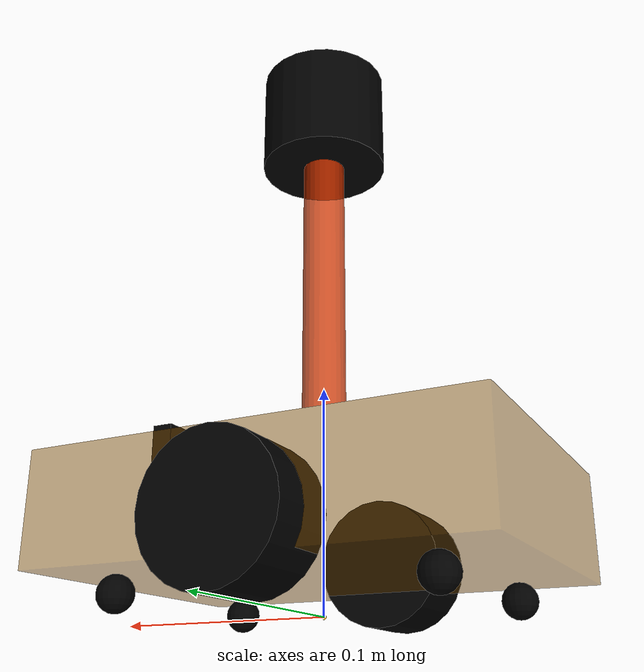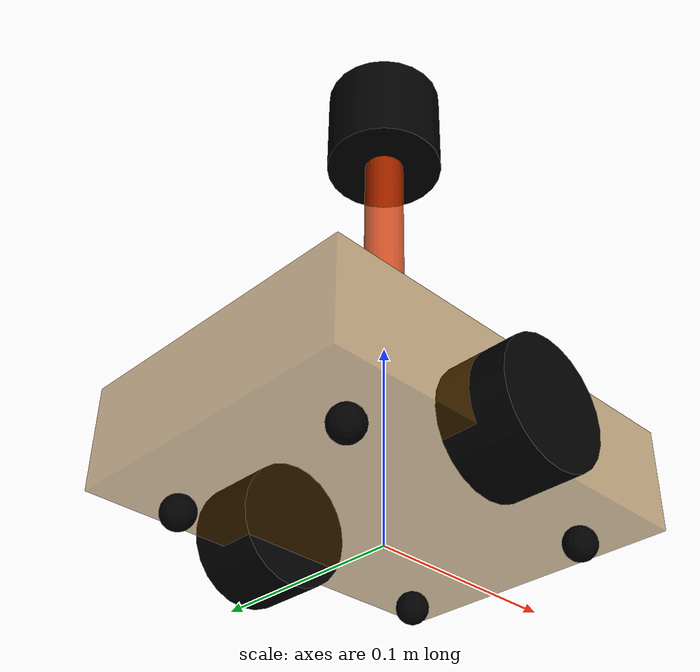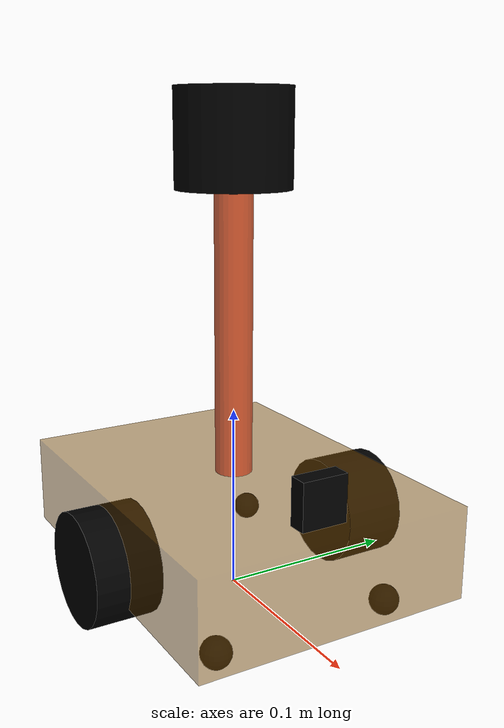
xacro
<robot name="my_car" xmlns:xacro="http://wiki.ros.org/xacro">
    <xacro:include filename="inertial.xacro" />
    <xacro:include filename="materials.xacro" />
    <xacro:include filename="my_base.urdf.xacro" />
    <xacro:include filename="my_camera.urdf.xacro" />
    <xacro:include filename="my_laser.urdf.xacro" />
    <xacro:include filename="move.urdf.xacro" />
    <xacro:include filename="camera_gazebo.urdf.xacro" />
    <xacro:include filename="laser_gazebo.urdf.xacro" />

</robot>

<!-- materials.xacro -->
<robot name="material" xmlns:xacro="http://wiki.ros.org/xacro">
  <material name="black">
    <color rgba="0.0 0.0 0.0 1.0"/>
  </material>
  <material name="blue">
    <color rgba="0.0 0.0 0.8 1.0"/>
  </material>
  <material name="green">
    <color rgba="0.0 0.8 0.0 1.0"/>
  </material>
  <material name="grey">
    <color rgba="0.2 0.2 0.2 1.0"/>
  </material>
  <material name="orange">
    <color rgba="${255/255} ${108/255} ${10/255} 1.0"/>
  </material>
  <material name="brown">
    <color rgba="${222/255} ${207/255} ${195/255} 1.0"/>
  </material>
  <material name="red">
    <color rgba="0.8 0.0 0.0 1.0"/>
  </material>
  <material name="white">
    <color rgba="1.0 1.0 1.0 1.0"/>
  </material>
  <material name="yellow">
    <color rgba="1.0 1.0 0.0 1.0"/>
  </material>
  <material name="purple">
    <color rgba="0.5 0.0 0.5 1.0"/>
  </material>
  <material name="pink">
    <color rgba="1.0 0.75 0.8 1.0"/>
  </material>
  <material name="cyan">
    <color rgba="0.0 1.0 1.0 1.0"/>
  </material>
  <material name="magenta">
    <color rgba="1.0 0.0 1.0 1.0"/>
  </material>
  <material name="light_blue">
    <color rgba="0.68 0.85 0.9 1.0"/>
  </material>
  <material name="dark_green">
    <color rgba="0.0 0.39 0.0 1.0"/>
  </material>
  <material name="olive">
    <color rgba="0.5 0.5 0.0 1.0"/>
  </material>
  <material name="teal">
    <color rgba="0.0 0.5 0.5 1.0"/>
  </material>
</robot>

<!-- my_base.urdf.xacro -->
<robot name="my_base" xmlns:xacro="http://www.ros.org/wiki/xacro">
    <xacro:property name="PI" value="3.14159"/>
    <!-- 底盘属性 -->
    <xacro:property name="base_footprint_radius" value="0.001" />
    <xacro:property name="base_link_l" value="0.2" />
    <xacro:property name="base_link_w" value="0.15" />
    <xacro:property name="base_link_h" value="0.05" />
    <xacro:property name="earth_space" value="0.016" />
    <!-- 离地间距 -->
    <xacro:property name="base_link_m" value="1.5" />
    <!-- 底盘 -->
    <link name="base_footprint">
        <visual>
            <geometry>
                <sphere radius="${base_footprint_radius}" />
            </geometry>
        </visual>
    </link>
    <link name="base_link">
        <visual>
            <geometry>
                <box size="${base_link_l} ${base_link_w} ${base_link_h}" />
            </geometry>
            <origin xyz="0 0 0" rpy="0 0 0" />
            <material name="yellow">
                <color rgba="0.5 0.3 0.0 0.5" />
            </material>
        </visual>
        <collision>
            <geometry>
                <box size="${base_link_l} ${base_link_w} ${base_link_h}" />
                <origin xyz="0 0 0" rpy="0 0 0" />
            </geometry>
        </collision>
        <xacro:Box_inertial_matrix m="${base_link_m}" l="${base_link_l}" w="${base_link_w}" h="${base_link_h}" />
    </link>
    <joint name="base_link2base_footprint" type="fixed">
        <parent link="base_footprint" />
        <child link="base_link" />
        <origin xyz="0 0 ${earth_space + base_link_h / 2 }" />
    </joint>
    <gazebo reference="base_link">
        <material>Gazebo/Blue</material>
    </gazebo>
    <!-- 驱动轮 -->
    <xacro:property name="wheel_radius" value="0.03" />
    <xacro:property name="wheel_length" value="0.035" />
    <xacro:property name="wheel_m" value="0.1" />
    <xacro:macro name="add_wheels" params="name flag">
        <link name="${name}_wheel">
            <visual>
                <geometry>
                    <cylinder radius="${wheel_radius}" length="${wheel_length}" />
                </geometry>
                <origin xyz="0.0 0.0 0.0" rpy="${PI / 2} 0.0 0.0" />
                <material name="black" />
            </visual>
            <collision>
                <geometry>
                    <cylinder radius="${wheel_radius}" length="${wheel_length}" />
                </geometry>
                <origin xyz="0.0 0.0 0.0" rpy="${PI / 2} 0.0 0.0" />
            </collision>
            <xacro:cylinder_inertial_matrix m="${wheel_m}" r="${wheel_radius}" h="${wheel_length}" />
        </link>
        <joint name="${name}_wheel2base_link" type="continuous">
            <parent link="base_link" />
            <child link="${name}_wheel" />
            <origin xyz="0 ${flag * base_link_w/2} ${-(earth_space + base_link_h / 2 - wheel_radius) }" />
            <axis xyz="0 1 0" />
        </joint>
        <gazebo reference="${name}_wheel">
            <material>Gazebo/Black</material>
        </gazebo>
    </xacro:macro>
    <xacro:add_wheels name="left" flag="1" />
    <xacro:add_wheels name="right" flag="-1" />
    <!-- 支撑轮 -->
    <xacro:property name="support_wheel_radius" value="0.008" />
    <xacro:property name="support_wheel_distance" value="0.03" />
    <xacro:property name="support_wheel_m" value="0.03" />
    <xacro:macro name="add_support_wheel" params="name flag number" >
        <link name="${name}_wheel_${number}">
            <visual>
                <geometry>
                    <sphere radius="${support_wheel_radius}" />
                </geometry>
                <origin xyz="0 0 0" rpy="0 0 0" />
                <material name="black" />
            </visual>
            <collision>
                <geometry>
                    <sphere radius="${support_wheel_radius}" />
                </geometry>
                <origin xyz="0 0 0" rpy="0 0 0" />
            </collision>
            <xacro:sphere_inertial_matrix m="${support_wheel_m}" r="${support_wheel_radius}" />
        </link>
        <joint name="${name}_wheel2base_link_${number}" type="continuous">
            <parent link="base_link" />
            <child link="${name}_wheel_${number}" />
            <origin xyz="${flag * (base_link_l / 2 - support_wheel_distance)} ${-0.05*(number-1)-0.05*(number-2)} ${-(base_link_h / 2 + support_wheel_radius)}" />
            <axis xyz="1 1 1" />
        </joint>
        <gazebo reference="${name}_wheel_${number}">
            <material>Gazebo/Black</material>
        </gazebo>
    </xacro:macro>
    <xacro:add_support_wheel name="front" flag="1" number="1"/>
    <xacro:add_support_wheel name="front" flag="1" number="2"/>
    <xacro:add_support_wheel name="back" flag="-1" number="1"/>
    <xacro:add_support_wheel name="back" flag="-1" number="2"/>
</robot>

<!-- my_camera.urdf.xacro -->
<!-- 摄像头相关的 xacro 文件 -->
<robot name="my_camera" xmlns:xacro="http://wiki.ros.org/xacro">
    <!-- 摄像头属性 -->
    <xacro:property name="camera_length" value="0.01" /> <!-- 摄像头长度(x) -->
    <xacro:property name="camera_width" value="0.025" /> <!-- 摄像头宽度(y) -->
    <xacro:property name="camera_height" value="0.025" /> <!-- 摄像头高度(z) -->
    <xacro:property name="camera_x" value="0.08" /> <!-- 摄像头安装的x坐标 -->
    <xacro:property name="camera_y" value="0.0" /> <!-- 摄像头安装的y坐标 -->
    <xacro:property name="camera_z" value="${base_link_h / 2 + camera_height / 2}" /> <!-- 摄像头安装的z坐标:底盘高度 / 2 + 摄像头高度 / 2  -->

    <xacro:property name="camera_m" value="0.01" /> <!-- 摄像头质量 -->

    <!-- 摄像头关节以及link -->
    <link name="camera">
        <visual>
            <geometry>
                <box size="${camera_length} ${camera_width} ${camera_height}" />
            </geometry>
            <origin xyz="0.0 0.0 0.0" rpy="0.0 0.0 0.0" />
            <material name="black" />
        </visual>
        <collision>
            <geometry>
                <box size="${camera_length} ${camera_width} ${camera_height}" />
            </geometry>
            <origin xyz="0.0 0.0 0.0" rpy="0.0 0.0 0.0" />
        </collision>
        <xacro:Box_inertial_matrix m="${camera_m}" l="${camera_length}" w="${camera_width}" h="${camera_height}" />
    </link>

    <joint name="camera2base_link" type="fixed">
        <parent link="base_link" />
        <child link="camera" />
        <origin xyz="${camera_x} ${camera_y} ${camera_z}" />
    </joint>
    <gazebo reference="camera">
        <material>Gazebo/Blue</material>
    </gazebo>
</robot>

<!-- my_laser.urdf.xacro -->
<!--
    小车底盘添加雷达
-->
<robot name="my_laser" xmlns:xacro="http://wiki.ros.org/xacro">

    <!-- 雷达支架 -->
    <xacro:property name="support_length" value="0.15" /> <!-- 支架长度 -->
    <xacro:property name="support_radius" value="0.01" /> <!-- 支架半径 -->
    <xacro:property name="support_x" value="0.0" /> <!-- 支架安装的x坐标 -->
    <xacro:property name="support_y" value="0.0" /> <!-- 支架安装的y坐标 -->
    <xacro:property name="support_z" value="${base_link_h / 2 + support_length / 2}" /> <!-- 支架安装的z坐标:底盘高度 / 2 + 支架高度 / 2  -->

    <xacro:property name="support_m" value="0.02" /> <!-- 支架质量 -->

    <link name="support">
        <visual>
            <geometry>
                <cylinder radius="${support_radius}" length="${support_length}" />
            </geometry>
            <origin xyz="0.0 0.0 0.0" rpy="0.0 0.0 0.0" />
            <material name="red">
                <color rgba="0.8 0.2 0.0 0.8" />
            </material>
        </visual>

        <collision>
            <geometry>
                <cylinder radius="${support_radius}" length="${support_length}" />
            </geometry>
            <origin xyz="0.0 0.0 0.0" rpy="0.0 0.0 0.0" />
        </collision>

        <xacro:cylinder_inertial_matrix m="${support_m}" r="${support_radius}" h="${support_length}" />

    </link>

    <joint name="support2base_link" type="fixed">
        <parent link="base_link" />
        <child link="support" />
        <origin xyz="${support_x} ${support_y} ${support_z}" />
    </joint>

    <gazebo reference="support">
        <material>Gazebo/White</material>
    </gazebo>

    <!-- 雷达属性 -->
    <xacro:property name="laser_length" value="0.05" /> <!-- 雷达长度 -->
    <xacro:property name="laser_radius" value="0.03" /> <!-- 雷达半径 -->
    <xacro:property name="laser_x" value="0.0" /> <!-- 雷达安装的x坐标 -->
    <xacro:property name="laser_y" value="0.0" /> <!-- 雷达安装的y坐标 -->
    <xacro:property name="laser_z" value="${support_length / 2 + laser_length / 2}" /> <!-- 雷达安装的z坐标:支架高度 / 2 + 雷达高度 / 2  -->

    <xacro:property name="laser_m" value="0.1" /> <!-- 雷达质量 -->

    <!-- 雷达关节以及link -->
    <link name="laser">
        <visual>
            <geometry>
                <cylinder radius="${laser_radius}" length="${laser_length}" />
            </geometry>
            <origin xyz="0.0 0.0 0.0" rpy="0.0 0.0 0.0" />
            <material name="black" />
        </visual>
        <collision>
            <geometry>
                <cylinder radius="${laser_radius}" length="${laser_length}" />
            </geometry>
            <origin xyz="0.0 0.0 0.0" rpy="0.0 0.0 0.0" />
        </collision>
        <xacro:cylinder_inertial_matrix m="${laser_m}" r="${laser_radius}" h="${laser_length}" />
    </link>

    <joint name="laser2support" type="fixed">
        <parent link="support" />
        <child link="laser" />
        <origin xyz="${laser_x} ${laser_y} ${laser_z}" />
    </joint>
    <gazebo reference="laser">
        <material>Gazebo/Black</material>
    </gazebo>
</robot>
